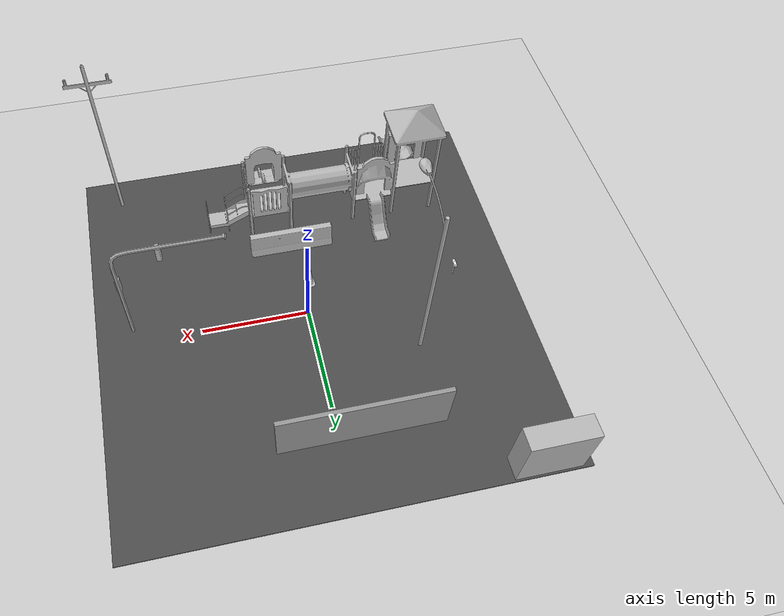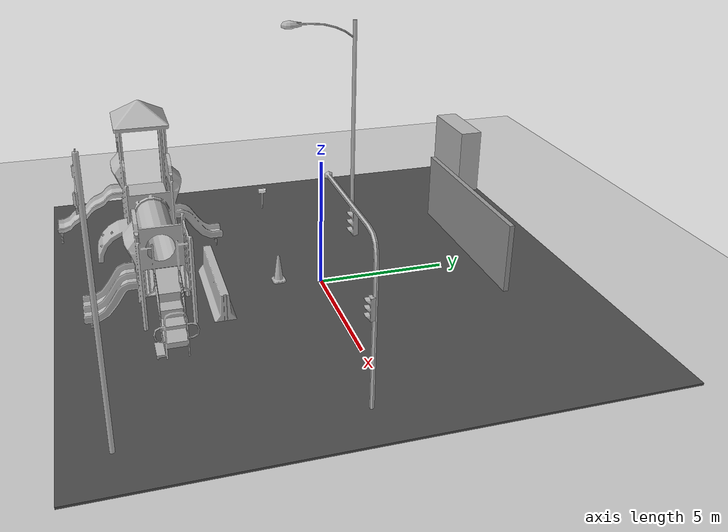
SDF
<sdf version="1.7">
 <world name="default">
  <light name="sun" type="directional">
   <pose>0 0 10 0 -0 0</pose>
   <diffuse>0.8 0.8 0.8 1</diffuse>
   <specular>0.2 0.2 0.2 1</specular>
   <attenuation>
    <range>1000</range>
    <constant>0.9</constant>
    <linear>0.01</linear>
    <quadratic>0.001</quadratic>
   </attenuation>
   <direction>-0.5 0.1 -0.9</direction>
   <spot><inner_angle>0</inner_angle><outer_angle>0</outer_angle><falloff>0</falloff></spot>
  </light>
  <model name="ground_plane">
   <static>1</static>
   <link name="link">
    <collision name="collision">
     <geometry><plane><normal>0 0 1</normal><size>100 100</size></plane></geometry>
     <surface><friction><ode><mu>100</mu><mu2>50</mu2></ode></friction></surface>
    </collision>
    <visual name="visual">
     <cast_shadows>0</cast_shadows>
     <geometry><plane><normal>0 0 1</normal><size>100 100</size></plane></geometry>
     <material>
      <script><uri>file://media/materials/scripts/gazebo.material</uri><name>Gazebo/Grey</name></script>
     </material>
    </visual>
   </link>
  </model>
  <gravity>0 0 -9.8</gravity>
  <magnetic_field>6e-06 2.3e-05 -4.2e-05</magnetic_field>
  <atmosphere type="adiabatic"/>
  <physics type="ode">
   <max_step_size>0.001</max_step_size>
   <real_time_factor>1</real_time_factor>
   <real_time_update_rate>1000</real_time_update_rate>
  </physics>
  <scene><ambient>0.4 0.4 0.4 1</ambient><background>0.7 0.7 0.7 1</background><shadows>1</shadows></scene>
  <spherical_coordinates>
   <surface_model>EARTH_WGS84</surface_model>
   <latitude_deg>0</latitude_deg>
   <longitude_deg>0</longitude_deg>
   <elevation>0</elevation>
   <heading_deg>0</heading_deg>
  </spherical_coordinates>
  <model name="Construction Cone">
   <link name="link">
    <collision name="collision">
     <geometry>
      <mesh><scale>10 10 10</scale><uri>model://construction_cone/meshes/construction_cone.dae</uri></mesh>
     </geometry>
    </collision>
    <visual name="visual">
     <geometry>
      <mesh><scale>10 10 10</scale><uri>model://construction_cone/meshes/construction_cone.dae</uri></mesh>
     </geometry>
    </visual>
    <inertial>
     <inertia><ixx>1</ixx><ixy>0</ixy><ixz>0</ixz><iyy>1</iyy><iyz>0</iyz><izz>1</izz></inertia>
     <mass>1</mass>
    </inertial>
   </link>
   <pose>-0.422003 -1.61591 0.05 1e-06 0 0.013389</pose>
  </model>
  <model name="stop_light_post">
   <static>1</static>
   <link name="link">
    <collision name="post">
     <geometry>
      <mesh><uri>model://stop_light_post/meshes/stop_light_post.obj</uri><scale>0.01 0.01 0.01</scale></mesh>
     </geometry>
    </collision>
    <visual name="post">
     <geometry>
      <mesh><uri>model://stop_light_post/meshes/stop_light_post.obj</uri><scale>0.01 0.01 0.01</scale></mesh>
     </geometry>
    </visual>
   </link>
   <frame name="right_light::__model__" attached_to="right_light::link">
    <pose relative_to="__model__">0 -0.05 4 0 -0 0</pose>
   </frame>
   <static>1</static>
   <link name="right_light::link">
    <collision name="collision">
     <geometry>
      <mesh><uri>model://stop_light/meshes/stop_light.obj</uri><scale>0.01 0.01 0.01</scale></mesh>
     </geometry>
    </collision>
    <visual name="frame">
     <geometry>
      <mesh><uri>model://stop_light/meshes/stop_light.obj</uri><scale>0.01 0.01 0.01</scale></mesh>
     </geometry>
    </visual>
    <visual name="red">
     <pose>-0.001123 -0.082251 -0.147514 0 -0 0</pose>
     <geometry><sphere><radius>0.1012</radius></sphere></geometry>
     <material>
      <script>
       <uri>model://stop_light/materials/scripts/</uri>
       <uri>model://stop_light/materials/textures/</uri>
       <name>StopLight/Light</name>
      </script>
      <ambient>1 0 0 1</ambient>
      <specular>1 0 0 1</specular>
     </material>
    </visual>
    <visual name="yellow">
     <pose>-0.001123 -0.082251 -0.402 0 -0 0</pose>
     <geometry><sphere><radius>0.1012</radius></sphere></geometry>
     <material>
      <script>
       <uri>model://stop_light/materials/scripts/</uri>
       <uri>model://stop_light/materials/textures/</uri>
       <name>StopLight/Light</name>
      </script>
      <ambient>1 1 0 1</ambient>
      <specular>1 1 0 1</specular>
     </material>
    </visual>
    <visual name="green">
     <pose>-0.001123 -0.082251 -0.655 0 -0 0</pose>
     <geometry><sphere><radius>0.1012</radius></sphere></geometry>
     <material>
      <script>
       <uri>model://stop_light/materials/scripts/</uri>
       <uri>model://stop_light/materials/textures/</uri>
       <name>StopLight/Light</name>
      </script>
      <ambient>0 1 0 1</ambient>
      <specular>0 1 0 1</specular>
     </material>
    </visual>
    <pose relative_to="right_light::__model__">0 0 0 0 -0 0</pose>
   </link>
   <frame name="center_light::__model__" attached_to="center_light::link">
    <pose relative_to="__model__">-2 0.04 5.82 0 -0 0</pose>
   </frame>
   <static>1</static>
   <link name="center_light::link">
    <collision name="collision">
     <geometry>
      <mesh><uri>model://stop_light/meshes/stop_light.obj</uri><scale>0.01 0.01 0.01</scale></mesh>
     </geometry>
    </collision>
    <visual name="frame">
     <geometry>
      <mesh><uri>model://stop_light/meshes/stop_light.obj</uri><scale>0.01 0.01 0.01</scale></mesh>
     </geometry>
    </visual>
    <visual name="red">
     <pose>-0.001123 -0.082251 -0.147514 0 -0 0</pose>
     <geometry><sphere><radius>0.1012</radius></sphere></geometry>
     <material>
      <script>
       <uri>model://stop_light/materials/scripts/</uri>
       <uri>model://stop_light/materials/textures/</uri>
       <name>StopLight/Light</name>
      </script>
      <ambient>1 0 0 1</ambient>
      <specular>1 0 0 1</specular>
     </material>
    </visual>
    <visual name="yellow">
     <pose>-0.001123 -0.082251 -0.402 0 -0 0</pose>
     <geometry><sphere><radius>0.1012</radius></sphere></geometry>
     <material>
      <script>
       <uri>model://stop_light/materials/scripts/</uri>
       <uri>model://stop_light/materials/textures/</uri>
       <name>StopLight/Light</name>
      </script>
      <ambient>1 1 0 1</ambient>
      <specular>1 1 0 1</specular>
     </material>
    </visual>
    <visual name="green">
     <pose>-0.001123 -0.082251 -0.655 0 -0 0</pose>
     <geometry><sphere><radius>0.1012</radius></sphere></geometry>
     <material>
      <script>
       <uri>model://stop_light/materials/scripts/</uri>
       <uri>model://stop_light/materials/textures/</uri>
       <name>StopLight/Light</name>
      </script>
      <ambient>0 1 0 1</ambient>
      <specular>0 1 0 1</specular>
     </material>
    </visual>
    <pose relative_to="center_light::__model__">0 0 0 0 -0 0</pose>
   </link>
   <pose>8.15802 -0.730486 0 0 -0 0</pose>
  </model>
  <model name="jersey_barrier">
   <static>1</static>
   <link name="link">
    <visual name="visual">
     <geometry><mesh><uri>model://jersey_barrier/meshes/jersey_barrier.dae</uri></mesh></geometry>
    </visual>
    <collision name="upright">
     <pose>0 0 0.5715 0 -0 0</pose>
     <geometry><box><size>4.06542 0.3063 1.143</size></box></geometry>
    </collision>
    <collision name="base">
     <pose>0 0 0.032258 0 -0 0</pose>
     <geometry><box><size>4.06542 0.8107 0.064516</size></box></geometry>
    </collision>
    <collision name="base2">
     <pose>0 0 0.1 0 -0 0</pose>
     <geometry><box><size>4.06542 0.65 0.1</size></box></geometry>
    </collision>
    <collision name="base3">
     <pose>0 0 0.2 0 -0 0</pose>
     <geometry><box><size>4.06542 0.5 0.1</size></box></geometry>
    </collision>
    <collision name="left-angle">
     <pose>0 -0.224 0.2401 0.9 -0 0</pose>
     <geometry><box><size>4.06542 0.5 0.064516</size></box></geometry>
    </collision>
    <collision name="right-angle">
     <pose>0 0.224 0.2401 -0.9 0 0</pose>
     <geometry><box><size>4.06542 0.5 0.064516</size></box></geometry>
    </collision>
   </link>
   <pose>-0.015065 -4.13357 0 0 -0 0</pose>
  </model>
  <model name="grey_wall">
   <static>1</static>
   <link name="link">
    <pose>0 0 1.4 0 -0 0</pose>
    <collision name="collision"><geometry><box><size>7.5 0.2 2.8</size></box></geometry></collision>
    <visual name="visual">
     <cast_shadows>0</cast_shadows>
     <geometry><box><size>7.5 0.2 2.8</size></box></geometry>
     <material>
      <script>
       <uri>model://grey_wall/materials/scripts</uri>
       <uri>model://grey_wall/materials/textures</uri>
       <name>vrc/grey_wall</name>
      </script>
     </material>
    </visual>
   </link>
   <pose>-0.996566 6.55839 0 0 -0 0</pose>
  </model>
  <model name="playground">
   <static>1</static>
   <link name="link">
    <collision name="collision">
     <geometry><mesh><uri>model://playground/meshes/playground.dae</uri></mesh></geometry>
    </collision>
    <visual name="visual">
     <geometry><mesh><uri>model://playground/meshes/playground.dae</uri></mesh></geometry>
    </visual>
   </link>
   <pose>-1.91392 -6.50561 0 0 -0 0</pose>
  </model>
  <model name="telephone_pole">
   <static>1</static>
   <link name="link">
    <collision name="collision_pole">
     <pose>0 0 4.572 0 -0 0</pose>
     <geometry><cylinder><radius>0.0779475</radius><length>9.144</length></cylinder></geometry>
    </collision>
    <collision name="collision_cross">
     <pose>0 -0.098806 8.04836 0 -0 0</pose>
     <geometry><box><size>2.11606 0.041763 0.177806</size></box></geometry>
    </collision>
    <visual name="visual">
     <geometry><mesh><uri>model://telephone_pole/meshes/telephone_pole.dae</uri></mesh></geometry>
    </visual>
   </link>
   <pose>8.04917 -8.49673 0 0 -0 0</pose>
  </model>
  <model name="Mailbox">
   <link name="link">
    <collision name="collision">
     <geometry><mesh><uri>model://mailbox/meshes/mailbox.dae</uri></mesh></geometry>
    </collision>
    <visual name="visual">
     <geometry><mesh><uri>model://mailbox/meshes/mailbox.dae</uri></mesh></geometry>
     <material>
      <script>
       <uri>model://mailbox/materials/scripts</uri>
       <uri>model://mailbox/materials/textures</uri>
       <name>Mailbox/Diffuse</name>
      </script>
     </material>
    </visual>
    <inertial>
     <inertia><ixx>1</ixx><ixy>0</ixy><ixz>0</ixz><iyy>1</iyy><iyz>0</iyz><izz>1</izz></inertia>
     <mass>1</mass>
    </inertial>
   </link>
   <pose>-7.34555 -0.747222 0.050019 0.00069 -0.0002 -1e-06</pose>
  </model>
  <model name="Lamp Post">
   <static>1</static>
   <link name="link">
    <collision name="collision">
     <geometry><mesh><uri>model://lamp_post/meshes/lamp_post.dae</uri><scale>3 3 3</scale></mesh></geometry>
    </collision>
    <visual name="visual">
     <geometry><mesh><uri>model://lamp_post/meshes/lamp_post.dae</uri><scale>3 3 3</scale></mesh></geometry>
    </visual>
   </link>
   <pose>-4.68062 2.7382 0 0 -0 0</pose>
  </model>
  <model name="brick_box_3x1x3">
   <static>1</static>
   <link name="chassis">
    <pose>0 0 1.5 0 -0 0</pose>
    <collision name="collision"><geometry><box><size>3 1 3</size></box></geometry></collision>
    <visual name="visual">
     <geometry><mesh><uri>model://brick_box_3x1x3/meshes/simple_box.dae</uri><scale>3 1 3</scale></mesh></geometry>
     <material>
      <script>
       <uri>model://brick_box_3x1x3/materials/scripts</uri>
       <uri>model://brick_box_3x1x3/materials/textures</uri>
       <name>BrickBox/Diffuse</name>
      </script>
     </material>
    </visual>
   </link>
   <pose>-8.18644 9.32806 0 0 -0 0</pose>
  </model>
  <model name="asphalt_plane">
   <static>1</static>
   <link name="link">
    <collision name="collision"><geometry><box><size>20 20 0.1</size></box></geometry></collision>
    <visual name="visual">
     <cast_shadows>0</cast_shadows>
     <geometry><box><size>20 20 0.1</size></box></geometry>
     <material>
      <script>
       <uri>model://asphalt_plane/materials/scripts</uri>
       <uri>model://asphalt_plane/materials/textures</uri>
       <name>vrc/asphalt</name>
      </script>
     </material>
    </visual>
   </link>
   <pose>-0.152583 -0.085934 0 0 -0 0</pose>
  </model>
 </world>
</sdf>
